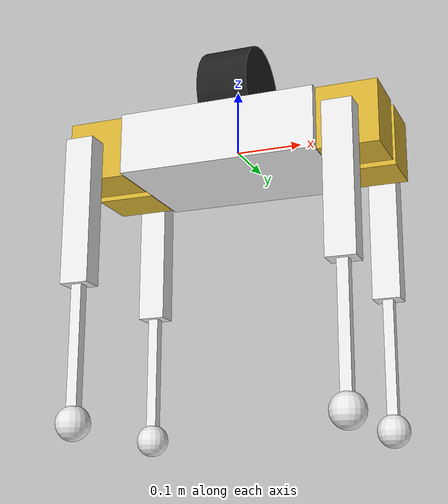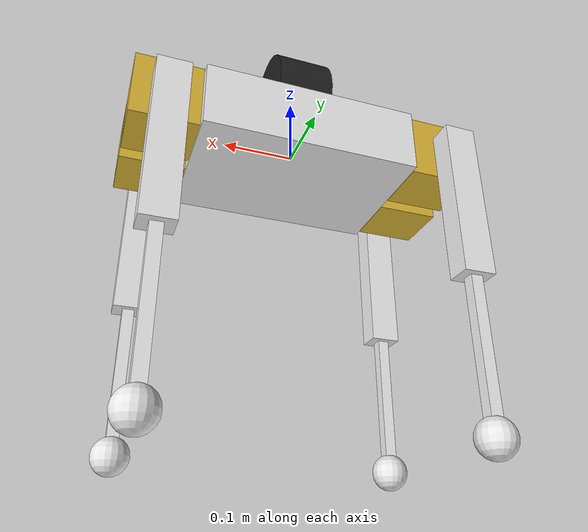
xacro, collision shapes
<?xml version="1.0"?>

<robot name="mini_cheetah_description" xmlns:xacro="http://www.ros.org/wiki/xacro">

    <xacro:include filename="$(find mini_cheetah_description)/xacro/const.xacro"/>
    <xacro:include filename="$(find mini_cheetah_description)/xacro/materials.xacro"/>
    <xacro:include filename="$(find mini_cheetah_description)/xacro/leg.xacro"/>
    <xacro:include filename="$(find mini_cheetah_description)/xacro/gazebo.xacro"/>

    <!-- Debug mode will hung up the robot, use "true" or "false" to switch it. -->

    <link name="trunk"/>
    <link name="trunk_interia">
        <visual>
            <origin rpy="0 0 0" xyz="0 0 0"/>
            <geometry>
                <mesh filename="package://mini_cheetah_description/meshes/trunk.STL" scale="1 1 1"/>
            </geometry>
            <material name="white_gray"/>
        </visual>
        <collision>
            <origin rpy="0 0 0" xyz="0 0 0"/>
            <geometry>
               <box size="${trunk_length} ${trunk_width} ${trunk_height}"/>
            </geometry>
        </collision>
        <inertial>
            <origin rpy="0 0 0" xyz="${trunk_com_x} ${trunk_com_y} ${trunk_com_z}"/>
            <mass value="${trunk_mass}"/>
            <inertia
                ixx="${trunk_ixx}" ixy="${trunk_ixy}" ixz="${trunk_ixz}"
                iyy="${trunk_iyy}" iyz="${trunk_iyz}"
                izz="${trunk_izz}"/>
        </inertial>
    </link>
   <joint name="trunk_to_trunk_inertia" type="fixed">
        <origin rpy="0 0 0" xyz="0 0 0"/>
        <parent link="trunk"/>
        <child link="trunk_interia"/>
    </joint>

    <xacro:leg name="RL" mirror="-1" mirror_dae="False" front_hind="1" front_hind_dae="True">
        <origin rpy="0 0 0" xyz="${leg_offset_x} ${-leg_offset_y} 0"/>
    </xacro:leg>

    <xacro:leg name="FL" mirror="-1" mirror_dae="False" front_hind="-1" front_hind_dae="False">

        <origin rpy="0 0 0" xyz="${-leg_offset_x} ${-leg_offset_y} 0"/>
    </xacro:leg>

    <xacro:leg name="RR" mirror="1" mirror_dae="True" front_hind="1" front_hind_dae="True">
        <origin rpy="0 0 0" xyz="${leg_offset_x} ${leg_offset_y} 0"/>
    </xacro:leg>

    <xacro:leg name="FR" mirror="1" mirror_dae="True" front_hind="-1" front_hind_dae="False">

        <origin rpy="0 0 0" xyz="${-leg_offset_x} ${leg_offset_y} 0"/>
    </xacro:leg>

    <xacro:include filename="$(find mini_cheetah_description)/xacro/accessories.urdf.xacro" />
</robot>

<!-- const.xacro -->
<robot name="mini_cheetah_description" xmlns:xacro="http://www.ros.org/wiki/xacro">

    <!-- Constants for robot dimensions -->
    <xacro:property name="PI" value="3.1415926535897931"/>
    <xacro:property name="stick_mass" value="0.00001"/>

    <!-- simplified collision value -->
    <xacro:property name="trunk_length" value="0.3"/>
    <xacro:property name="trunk_width" value="0.20"/>
    <xacro:property name="trunk_height" value="0.093"/>

    <xacro:property name="hip_length" value="0.09"/>
    <xacro:property name="hip_width" value="0.08"/>
    <xacro:property name="hip_height" value="0.093"/>

    <xacro:property name="thigh_length" value="0.043"/>
    <xacro:property name="thigh_width" value="0.034"/>
    <xacro:property name="thigh_height" value="0.22"/>

    <xacro:property name="calf_length" value="0.016"/>
    <xacro:property name="calf_width" value="0.016"/>
    <xacro:property name="calf_height" value="0.20"/>

    <xacro:property name="foot_radius" value="0.0265"/>
    <xacro:property name="stick_radius" value="0.01"/>
    <xacro:property name="stick_length" value="0.2"/>

    <!-- kinematic value -->
    <xacro:property name="thigh_offset" value="0.077476"/>

    <xacro:property name="calf_offset_x" value="0"/>
    <xacro:property name="calf_offset_y" value="0.0106"/>
    <xacro:property name="calf_offset_z" value="0.2115"/>

    <xacro:property name="foot_offset_x" value="0"/>
    <xacro:property name="foot_offset_y" value="0.0096"/>
    <xacro:property name="foot_offset_z" value="0.21039"/>

    <!-- leg offset from trunk center value -->
    <xacro:property name="leg_offset_x" value="-0.196"/>
    <xacro:property name="leg_offset_y" value="-0.049664"/>
    <xacro:property name="trunk_offset_z" value="0.04592"/>
    <xacro:property name="hip_offset" value="0.019"/>

    <!-- joint limits -->

    <!-- joint limits -->
    <xacro:property name="damping" value="0"/>
    <xacro:property name="friction" value="0"/>
    <xacro:property name="hip_max" value="50"/>
    <xacro:property name="hip_min" value="-60"/>
    <xacro:property name="hip_velocity_max" value="10.6"/>
    <xacro:property name="hip_torque_max" value="20"/>
    <xacro:property name="thigh_max" value="30"/>
    <xacro:property name="thigh_min" value="-225"/>
    <xacro:property name="thigh_velocity_max" value="10.6"/>
    <xacro:property name="thigh_torque_max" value="20"/>
    <xacro:property name="calf_max" value="159"/>
    <xacro:property name="calf_min" value="35"/>
    <xacro:property name="calf_velocity_max" value="10.6"/>
    <xacro:property name="calf_torque_max" value="20"/>

    <!-- dynamics inertial value -->
    <!-- trunk -->
    <xacro:property name="trunk_mass" value="3.3"/>
    <xacro:property name="trunk_com_x" value="0.0"/>
    <xacro:property name="trunk_com_y" value="0.0"/>
    <xacro:property name="trunk_com_z" value="0.0"/>
    <xacro:property name="trunk_ixx" value="0.011253"/>
    <xacro:property name="trunk_ixy" value="0"/>
    <xacro:property name="trunk_ixz" value="0.0"/>
    <xacro:property name="trunk_iyy" value="0.036203"/>
    <xacro:property name="trunk_iyz" value="-0.0"/>
    <xacro:property name="trunk_izz" value="0.042673"/>

    <!-- hip -->
    <xacro:property name="hip_mass" value="0.57000000"/>
    <xacro:property name="hip_com_x" value="0.00"/>
    <xacro:property name="hip_com_y" value="0.036"/>
    <xacro:property name="hip_com_z" value="0.0"/>

    <!-- thigh -->
    <xacro:property name="thigh_mass" value="0.634"/>
    <xacro:property name="thigh_com_x" value="0.0"/>
    <xacro:property name="thigh_com_y" value="0.016"/>
    <xacro:property name="thigh_com_z" value="-${thigh_height / 2}"/>

    <!-- calf -->
    <xacro:property name="calf_mass" value="0.064"/>
    <xacro:property name="calf_com_x" value="0.0"/>
    <xacro:property name="calf_com_y" value="0.0"/>
    <xacro:property name="calf_com_z" value="0.0"/>

    <!-- foot -->
    <xacro:property name="foot_mass" value="0.15"/>
    <xacro:property name="foot_com_x" value="0.0"/>
    <xacro:property name="foot_com_y" value="0.0"/>
    <xacro:property name="foot_com_z" value="0"/>
    <xacro:property name="foot_ixx" value="0.000025"/>
    <xacro:property name="foot_ixy" value="0.0"/>
    <xacro:property name="foot_ixz" value="0.0"/>
    <xacro:property name="foot_iyy" value="0.000025"/>
    <xacro:property name="foot_iyz" value="0.0"/>
    <xacro:property name="foot_izz" value="0.000025"/>

</robot>

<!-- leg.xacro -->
<robot xmlns:xacro="http://www.ros.org/wiki/xacro">

    <xacro:include filename="$(find mini_cheetah_description)/xacro/transmission.xacro"/>

    <xacro:macro name="leg" params="name mirror mirror_dae front_hind front_hind_dae *origin">

<!-- //////////////////////hip//////////////////// -->
        <joint name="${name}_hip_joint" type="revolute">
            <xacro:insert_block name="origin"/>
            <parent link="trunk"/>
            <child link="${name}_hip"/>
            <axis xyz="1 0 0"/>
            <dynamics damping="${damping}" friction="${friction}"/>
            <xacro:if value="${(mirror_dae == False)}">
                <limit effort="${hip_torque_max}" velocity="${hip_velocity_max}" lower="${hip_min*PI/180.0}" upper="${hip_max*PI/180.0}"/>
            </xacro:if>
            <xacro:if value="${(mirror_dae == True)}">
                <limit effort="${hip_torque_max}" velocity="${hip_velocity_max}" lower="${-hip_max*PI/180.0}" upper="${-hip_min*PI/180.0}"/>
            </xacro:if>
        </joint>

        <link name="${name}_hip">
            <visual>
                <xacro:if value="${(mirror_dae == True) and (front_hind_dae == True)}">
                    <origin rpy="0 0 0" xyz="0 0 0"/>
                </xacro:if>
                <xacro:if value="${(mirror_dae == False) and (front_hind_dae == True)}">
                    <origin rpy="${PI} 0 0" xyz="0 0 0"/>
                </xacro:if>
                <xacro:if value="${(mirror_dae == True) and (front_hind_dae == False)}">
                    <origin rpy="0 ${PI} 0" xyz="0 0 0"/>
                </xacro:if>
                <xacro:if value="${(mirror_dae == False) and (front_hind_dae == False)}">
                    <origin rpy="${PI} ${PI} 0" xyz="0 0 0"/>
                </xacro:if>
                <geometry>
                    <mesh filename="package://mini_cheetah_description/meshes/hip.STL" scale="1 1 1"/>
                </geometry>
                <material name="gold"/>
            </visual>
            <collision>
                <geometry>
                    <box size="${hip_length} ${hip_width} ${hip_height}"/>
                </geometry>
            </collision>
            <inertial>
                <origin rpy="0 0 0" xyz="${hip_com_x*front_hind} ${hip_com_y*mirror} ${hip_com_z}"/>
                <mass value="${hip_mass}"/>
                <inertia ixx="${(1/12) * hip_mass * (hip_width * hip_width + hip_height * hip_height)}" ixy="0.0" ixz="0.0"
                         iyy="${(1/12) * hip_mass * (hip_length * hip_length + hip_height * hip_height)}" iyz="0.0"
                         izz="${(1/12) * hip_mass * (hip_length * hip_length + hip_width * hip_width)}" />
            </inertial>
        </link>

<!-- //////////////////////thigh//////////////////// -->

        <joint name="${name}_thigh_joint" type="revolute">
            <origin rpy="0 0 0" xyz="0 ${-thigh_offset*mirror} 0"/>
            <parent link="${name}_hip"/>
            <child link="${name}_thigh"/>
            <axis xyz="0 -1 0"/>
            <dynamics damping="${damping}" friction="${friction}"/>
            <limit effort="${thigh_torque_max}" velocity="${thigh_velocity_max}" lower="${thigh_min*PI/180.0}" upper="${thigh_max*PI/180.0}"/>
        </joint>

        <link name="${name}_thigh">
            <visual>
                <xacro:if value="${mirror_dae == True}">
                    <origin rpy="0 0 0" xyz="0 0 0"/>
                </xacro:if>
                <xacro:if value="${mirror_dae == False}">
                    <origin rpy="${PI} ${PI} 0" xyz="0 0 0"/>
                </xacro:if>
                <geometry>
                    <mesh filename="package://mini_cheetah_description/meshes/thigh.STL" scale="1 1 1"/>
                </geometry>
                <material name="white_blue"/>
            </visual>
            <collision>
                <origin rpy="0 0 0" xyz="0 0 -${thigh_height / 2}"/>
                <geometry>
                    <box size="${thigh_length} ${thigh_width} ${thigh_height}"/>
                </geometry>
                <material name="white_blue"/>
            </collision>
            <inertial>
                <origin rpy="0 0 0" xyz="${thigh_com_x} ${thigh_com_y*mirror} ${thigh_com_z}"/>
                <mass value="${thigh_mass}"/>
                <inertia ixx="${(1/12) * thigh_mass * (thigh_width * thigh_width + thigh_height * thigh_height)}" ixy="0.0" ixz="0.0"
                         iyy="${(1/12) * thigh_mass * (thigh_length * thigh_length + thigh_height * thigh_height)}" iyz="0.0"
                         izz="${(1/12) * thigh_mass * (thigh_length * thigh_length + thigh_width * thigh_width)}" />
            </inertial>
        </link>

<!-- //////////////////////calf//////////////////// -->
        <joint name="${name}_calf_joint" type="revolute">
            <origin rpy="0 0 0" xyz="0 0 -0.2115"/>
            <parent link="${name}_thigh"/>
            <child link="${name}_calf"/>
            <axis xyz="0 -1 0"/>
            <dynamics damping="${damping}" friction="${friction}"/>
            <limit effort="${calf_torque_max}" velocity="${calf_velocity_max}" lower="-${PI}" upper="${PI}"/>
        </joint>

        <link name="${name}_calf">
            <visual>
                <origin rpy="0 0 0" xyz="0.0 0.009 0.0" />
                <geometry>
                    <mesh filename="package://mini_cheetah_description/meshes/calf.STL" scale="1 1 1"/>
                </geometry>
                <material name="white_blue"/>
            </visual>
            <collision>
                <origin rpy="0 0 0" xyz="0.0 0.0 -${calf_height / 2}" />
                <geometry>
                    <box size="${calf_length} ${calf_width} ${calf_height}"/>
                </geometry>
            </collision>
            <inertial>
                <origin rpy="0 0 0" xyz="${calf_com_x} ${calf_com_y} ${calf_com_z}"/>
                <mass value="${calf_mass}"/>
                <inertia ixx="${(1/12) * calf_mass * (calf_width * calf_width + calf_height * calf_height)}" ixy="0.0" ixz="0.0"
                         iyy="${(1/12) * calf_mass * (calf_length * calf_length + calf_height * calf_height)}" iyz="0.0"
                         izz="${(1/12) * calf_mass * (calf_length * calf_length + calf_width * calf_width)}" />
            </inertial>
        </link>

<!-- //////////////////////foot//////////////////// -->
        <joint name="${name}_foot_fixed" type="fixed">
            <origin rpy="0 0 0" xyz="0 0 -0.23039"/>
            <parent link="${name}_calf"/>
            <child link="${name}_foot"/>
        </joint>

        <link name="${name}_foot">
            <visual>
                <origin rpy="0 0 0" xyz="0 0.018 0.02"/>
                <geometry>
                     <mesh filename="package://mini_cheetah_description/meshes/foot.STL" scale="1 1 1"/>
                </geometry>
                <material name="white_black"/>
            </visual>
            <collision>
                <origin rpy="0 0 0" xyz="0 0.0 0.025"/>
                <geometry>
                    <sphere radius="0.025"/>
                </geometry>
            </collision>
            <inertial>
                <origin rpy="0 0 0" xyz="${foot_com_x} ${foot_com_y} ${foot_com_z}"/>
                <mass value="${foot_mass}"/>
                <inertia ixx="${(2/5) * foot_mass * ( (foot_radius) * (foot_radius) )}" ixy="0.0" ixz="0.0"
                         iyy="${(2/5) * foot_mass * ( (foot_radius) * (foot_radius) )}" iyz="0.0"
                         izz="${(2/5) * foot_mass * ( (foot_radius) * (foot_radius) )}" />
            </inertial>
        </link>

        <xacro:leg_transmission name="${name}"/>
    </xacro:macro>
</robot>

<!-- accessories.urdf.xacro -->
<robot xmlns:xacro="http://ros.org/wiki/xacro">
    <xacro:include filename="$(find hector_sensors_description)/urdf/hokuyo_utm30lx.urdf.xacro" />
    <xacro:include filename="$(find hector_sensors_description)/urdf/asus_camera.urdf.xacro" />

    <xacro:hokuyo_utm30lx
        name="hokuyo"
        parent="trunk"
        ros_topic="scan"
        update_rate="30"
        ray_count="1040"
        min_angle="130"
        max_angle="-130" >
        <origin xyz="0.0 0.0 ${trunk_height}" rpy="0 0 0"/>
    </xacro:hokuyo_utm30lx>

    <gazebo reference="hokuyo_frame">
		<material>Gazebo/FlatBlack</material>
	</gazebo>

    <gazebo>
        <plugin name="imu_controller" filename="libhector_gazebo_ros_imu.so">
            <updateRate>50.0</updateRate>
            <bodyName>imu_link</bodyName>
            <topicName>imu/data</topicName>
            <accelDrift>0.005 0.005 0.005</accelDrift>
            <accelGaussianNoise>0.005 0.005 0.005</accelGaussianNoise>
            <rateDrift>0.005 0.005 0.005 </rateDrift>
            <rateGaussianNoise>0.005 0.005 0.005 </rateGaussianNoise>
            <headingDrift>0.005</headingDrift>
            <headingGaussianNoise>0.005</headingGaussianNoise>
        </plugin>
    </gazebo>

    <link name="imu_link">
        <inertial>
            <mass value="0.001"/>
            <origin xyz="0 0 0" rpy="0 0 0"/>
            <inertia ixx="1e-09" ixy="0.0" ixz="0.0" iyy="1e-09" iyz="0.0" izz="1e-09"/>
        </inertial>
    </link>
    <joint name="imu_joint" type="fixed">
        <parent link="trunk" />
        <child link="imu_link" />
    </joint>

</robot>

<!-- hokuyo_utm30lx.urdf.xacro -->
<robot xmlns:xacro="http://ros.org/wiki/xacro">
    <xacro:property name="M_PI" value="3.1415926535897931" />

    <xacro:macro name="hokuyo_utm30lx_model" params="name parent *origin">
      <joint name="${name}_joint" type="fixed">
        <xacro:insert_block name="origin" />
        <parent link="${parent}"/>
        <child link="${name}_frame"/>
      </joint>

      <link name="${name}_frame">
        <inertial>
          <mass value="0.270" />
          <origin xyz="0 0 0" rpy="0 0 0" />
          <inertia ixx="2.632e-4" ixy="0" ixz="0" iyy="2.632e-4" iyz="0" izz="1.62e-4" />
        </inertial>
        <visual>
          <origin xyz="0 0 0" rpy="0 0 0" />
          <geometry>
          <mesh filename="package://hector_sensors_description/meshes/hokuyo_utm30lx/hokuyo_utm_30lx$(optenv TEST_SELF_FILTER).dae"/>
        </geometry>
        </visual>
        <collision>
          <origin xyz="0.00 0 0.0" rpy="0 ${0.5 * M_PI} 0" />
          <geometry>
	    <cylinder length="0.079" radius="0.0735"/>
        </geometry>
        </collision>
      </link>
    </xacro:macro>

    <xacro:macro name="hokuyo_utm30lx" params="name parent *origin ros_topic update_rate ray_count min_angle max_angle">
      <xacro:hokuyo_utm30lx_model name="${name}" parent="${parent}">
        <xacro:insert_block name="origin" />
      </xacro:hokuyo_utm30lx_model>

      <gazebo reference="${name}_frame">
        <sensor type="ray" name="${name}">
          <always_on>true</always_on>
          <update_rate>${update_rate}</update_rate>
          <pose>0 0 0 0 0 0</pose>
          <visualize>false</visualize>
          <ray>
            <scan>
              <horizontal>
                <samples>${ray_count}</samples>
                <resolution>1</resolution>
                <min_angle>${min_angle * M_PI/180}</min_angle>
                <max_angle>${max_angle * M_PI/180}</max_angle>
              </horizontal>
            </scan>
            <range>
              <min>0.2</min>
              <max>30.0</max>
              <resolution>0.01</resolution>
            </range>
            <noise>
              <type>gaussian</type>
              <mean>0.0</mean>
              <stddev>0.004</stddev>
            </noise>
          </ray>
          <plugin name="gazebo_ros_${name}_controller" filename="libgazebo_ros_laser.so">
            <gaussianNoise>0.005</gaussianNoise>
            <hokuyoMinIntensity>2000</hokuyoMinIntensity>
            <alwaysOn>true</alwaysOn>
	    <robotNamespace>$(arg robot_name)/sensor/</robotNamespace>
            <updateRate>${update_rate}</updateRate>
            <topicName>${ros_topic}</topicName>
            <frameName>${name}_frame</frameName>
          </plugin>
        </sensor>
      </gazebo>
    </xacro:macro>

    <xacro:macro name="hokuyo_utm30lx_gpu" params="name parent *origin ros_topic update_rate ray_count min_angle max_angle">
      <xacro:hokuyo_utm30lx_model name="${name}" parent="${parent}">
        <xacro:insert_block name="origin" />
      </xacro:hokuyo_utm30lx_model>

      <gazebo reference="${name}_frame">
        <sensor type="gpu_ray" name="${name}">
          <update_rate>${update_rate}</update_rate>
          <pose>0 0 0 0 0 0</pose>
          <visualize>false</visualize>
          <ray>
            <scan>
              <horizontal>
                <samples>${ray_count}</samples>
                <resolution>1</resolution>
                <min_angle>${min_angle * M_PI/180}</min_angle>
                <max_angle>${max_angle * M_PI/180}</max_angle>
              </horizontal>
            </scan>
            <range>
              <min>0.2</min>
              <max>30.0</max>
              <resolution>0.01</resolution>
            </range>
            <noise>
              <type>gaussian</type>
              <mean>0.0</mean>
              <stddev>0.004</stddev>
            </noise>
          </ray>
          <plugin name="gazebo_ros_${name}_controller" filename="libgazebo_ros_gpu_laser.so">
            <topicName>${ros_topic}</topicName>
            <frameName>${name}_frame</frameName>
          </plugin>
        </sensor>
      </gazebo>
    </xacro:macro>
</robot>

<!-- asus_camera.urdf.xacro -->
<robot xmlns:xacro="http://ros.org/wiki/xacro">
    <xacro:property name="M_PI" value="3.1415926535897931" />

    <xacro:macro name="asus_camera_model" params="name parent *origin">
      <joint name="${name}_joint" type="fixed">
        <xacro:insert_block name="origin" />
        <parent link="${parent}"/>
        <child link="${name}_link"/>
      </joint>

      <link name="${name}_link">
        <inertial>
          <mass value="0.200" />
          <origin xyz="0 0 0" rpy="0 0 0" />
          <inertia ixx="5.8083e-4" ixy="0" ixz="0" iyy="3.0833e-5" iyz="0" izz="5.9083e-4" />
        </inertial>
        <visual>
          <origin xyz="0 0 0" rpy="0 0 0" />
          <geometry>
            <mesh filename="package://hector_sensors_description/meshes/asus_camera/asus_camera_simple.dae"/>
          </geometry>
        </visual>
        <collision>
          <origin xyz="0 0 0" rpy="0 0 0" />
          <geometry>
            <mesh filename="package://hector_sensors_description/meshes/asus_camera/asus_camera_simple.dae"/>
          </geometry>
        </collision>

      </link>

      <joint name="${name}_depth_joint" type="fixed">
        <origin xyz="0.0 0.049 0.0" rpy="0 0 0" />
        <parent link="${name}_link" />
        <child link="${name}_depth_frame"/>
      </joint>

      <link name="${name}_depth_frame"/>

      <joint name="${name}_depth_optical_joint" type="fixed">
        <origin xyz="0 0 0" rpy="${-M_PI/2} 0.0 ${-M_PI/2}" />
        <parent link="${name}_depth_frame" />
        <child link="${name}_depth_optical_frame"/>
      </joint>

      <link name="${name}_depth_optical_frame"/>

      <joint name="${name}_rgb_joint" type="fixed">
        <origin xyz="0.0 0.022 0.0" rpy="0 0 0" />
        <parent link="${name}_link" />
        <child link="${name}_rgb_frame"/>
      </joint>

      <link name="${name}_rgb_frame"/>

      <joint name="${name}_rgb_optical_joint" type="fixed">
        <origin xyz="0 0 0" rpy="${-M_PI/2} 0.0 ${-M_PI/2}" />
        <parent link="${name}_rgb_frame" />
        <child link="${name}_rgb_optical_frame"/>
      </joint>

      <link name="${name}_rgb_optical_frame"/>
    </xacro:macro>

    <xacro:macro name="asus_camera" params="name parent *origin">
      <xacro:asus_camera_model name="${name}" parent="${parent}">
        <xacro:insert_block name="origin" />
      </xacro:asus_camera_model>

      <!-- ASUS Xtion PRO camera for simulation -->
      <gazebo reference="${name}_depth_frame">
        <sensor type="depth" name="${name}">
          <update_rate>20</update_rate>
          <camera>
            <horizontal_fov>${62.8 * M_PI/180.0}</horizontal_fov>
            <image>
              <format>R8G8B8</format>
              <width>640</width>
              <height>480</height>
            </image>
            <clip>
              <near>0.5</near>
              <far>9</far>
            </clip>
          </camera>
          <plugin name="${name}_camera_controller" filename="libgazebo_ros_openni_kinect.so">
            <alwaysOn>true</alwaysOn>
            <updateRate>20</updateRate>
	    <robotNamespace>$(arg robot_name)/sensor/</robotNamespace>
            <imageTopicName>${name}/rgb/image_raw</imageTopicName>
            <cameraInfoTopicName>${name}/rgb/camera_info</cameraInfoTopicName>
            <depthImageTopicName>${name}/depth/image_raw</depthImageTopicName>
            <depthImageCameraInfoTopicName>${name}/depth/camera_info</depthImageCameraInfoTopicName>
            <pointCloudTopicName>${name}/depth/points</pointCloudTopicName>
            <frameName>${name}_depth_optical_frame</frameName>
            <distortion_k1>0.0</distortion_k1>
            <distortion_k2>0.0</distortion_k2>
            <distortion_k3>0.0</distortion_k3>
            <distortion_t1>0.0</distortion_t1>
            <distortion_t2>0.0</distortion_t2>
          </plugin>
        </sensor>
      </gazebo>
    </xacro:macro>
  </robot>
